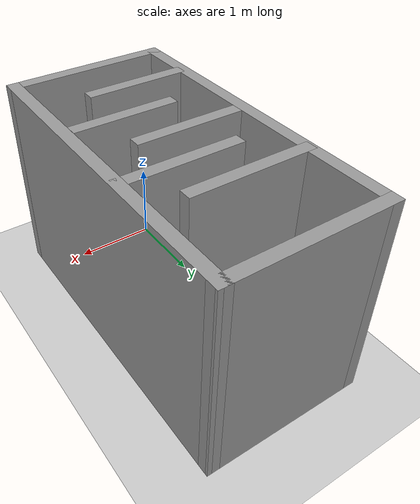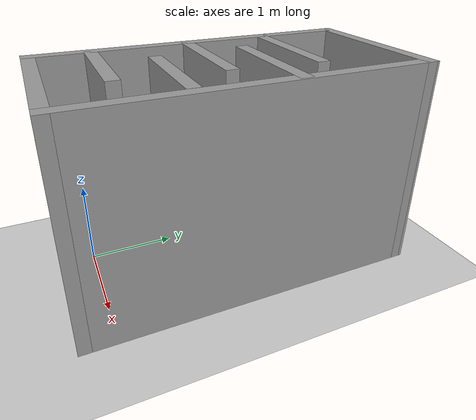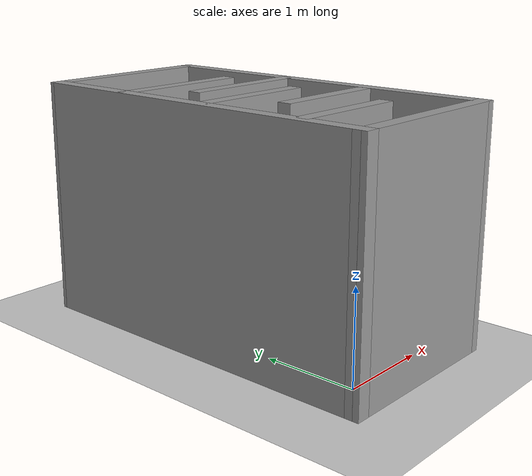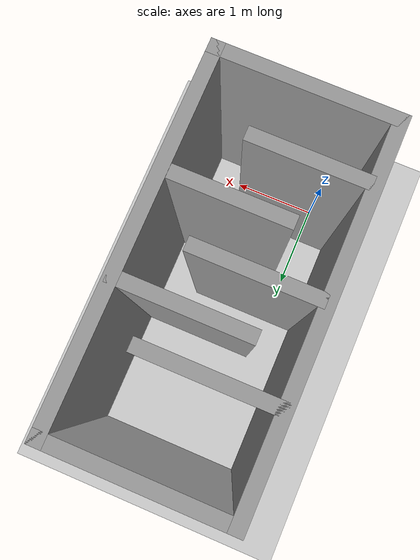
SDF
<sdf version="1.7">
 <world name="default">
  <light name="sun" type="directional">
   <pose>0 0 10 0 -0 0</pose>
   <diffuse>0.8 0.8 0.8 1</diffuse>
   <specular>0.2 0.2 0.2 1</specular>
   <attenuation>
    <range>1000</range>
    <constant>0.9</constant>
    <linear>0.01</linear>
    <quadratic>0.001</quadratic>
   </attenuation>
   <direction>-0.5 0.1 -0.9</direction>
   <spot><inner_angle>0</inner_angle><outer_angle>0</outer_angle><falloff>0</falloff></spot>
  </light>
  <model name="ground_plane">
   <static>1</static>
   <link name="link">
    <collision name="collision">
     <geometry><plane><normal>0 0 1</normal><size>100 100</size></plane></geometry>
     <surface>
      <contact><collide_bitmask>65535</collide_bitmask></contact>
      <friction><ode><mu>100</mu><mu2>50</mu2></ode></friction>
     </surface>
    </collision>
    <visual name="visual">
     <cast_shadows>0</cast_shadows>
     <geometry><plane><normal>0 0 1</normal><size>100 100</size></plane></geometry>
     <material>
      <script><uri>file://media/materials/scripts/gazebo.material</uri><name>Gazebo/Grey</name></script>
     </material>
    </visual>
   </link>
  </model>
  <gravity>0 0 -9.8</gravity>
  <magnetic_field>6e-06 2.3e-05 -4.2e-05</magnetic_field>
  <atmosphere type="adiabatic"/>
  <physics type="ode">
   <max_step_size>0.001</max_step_size>
   <real_time_factor>1</real_time_factor>
   <real_time_update_rate>1000</real_time_update_rate>
  </physics>
  <scene><ambient>0.4 0.4 0.4 1</ambient><background>0.7 0.7 0.7 1</background><shadows>1</shadows></scene>
  <spherical_coordinates>
   <surface_model>EARTH_WGS84</surface_model>
   <latitude_deg>0</latitude_deg>
   <longitude_deg>0</longitude_deg>
   <elevation>0</elevation>
   <heading_deg>0</heading_deg>
  </spherical_coordinates>
  <model name="corridor">
   <pose>-0.01072 1.6018 0 0 -0 1.56929</pose>
   <link name="Wall_14">
    <collision name="Wall_14_Collision">
     <geometry><box><size>4.01373 0.15 2.5</size></box></geometry>
     <pose>0 0 1.25 0 -0 0</pose>
    </collision>
    <visual name="Wall_14_Visual">
     <pose>0 0 1.25 0 -0 0</pose>
     <geometry><box><size>4.01373 0.15 2.5</size></box></geometry>
     <material>
      <script><uri>file://media/materials/scripts/gazebo.material</uri><name>Gazebo/Grey</name></script>
      <ambient>1 1 1 1</ambient>
     </material>
     <meta><layer>0</layer></meta>
    </visual>
    <pose>-0 -1.4603 0 0 -0 -8.4e-05</pose>
   </link>
   <link name="Wall_15">
    <collision name="Wall_15_Collision">
     <geometry><box><size>2 0.15 2.5</size></box></geometry>
     <pose>0 0 1.25 0 -0 0</pose>
    </collision>
    <visual name="Wall_15_Visual">
     <pose>0 0 1.25 0 -0 0</pose>
     <geometry><box><size>2 0.15 2.5</size></box></geometry>
     <material>
      <script><uri>file://media/materials/scripts/gazebo.material</uri><name>Gazebo/Grey</name></script>
      <ambient>1 1 1 1</ambient>
     </material>
     <meta><layer>0</layer></meta>
    </visual>
    <pose>1.93186 -0.535466 0 0 -0 1.5708</pose>
   </link>
   <link name="Wall_16">
    <collision name="Wall_16_Collision">
     <geometry><box><size>4.01373 0.15 2.5</size></box></geometry>
     <pose>0 0 1.25 0 -0 0</pose>
    </collision>
    <visual name="Wall_16_Visual">
     <pose>0 0 1.25 0 -0 0</pose>
     <geometry><box><size>4.01373 0.15 2.5</size></box></geometry>
     <material>
      <script><uri>file://media/materials/scripts/gazebo.material</uri><name>Gazebo/Grey</name></script>
      <ambient>1 1 1 1</ambient>
     </material>
     <meta><layer>0</layer></meta>
    </visual>
    <pose>-0 0.389696 0 0 -0 3.14151</pose>
   </link>
   <link name="Wall_76">
    <collision name="Wall_76_Collision">
     <geometry><box><size>1.25 0.15 2.5</size></box></geometry>
     <pose>0 0 1.25 0 -0 0</pose>
    </collision>
    <visual name="Wall_76_Visual">
     <pose>0 0 1.25 0 -0 0</pose>
     <geometry><box><size>1.25 0.15 2.5</size></box></geometry>
     <material>
      <script><uri>file://media/materials/scripts/gazebo.material</uri><name>Gazebo/Grey</name></script>
      <ambient>1 1 1 1</ambient>
     </material>
     <meta><layer>0</layer></meta>
    </visual>
    <pose>-1.26787 -0.252791 0 0 -0 -1.5708</pose>
   </link>
   <link name="Wall_78">
    <collision name="Wall_78_Collision">
     <geometry><box><size>1.25 0.15 2.5</size></box></geometry>
     <pose>0 0 1.25 0 -0 0</pose>
    </collision>
    <visual name="Wall_78_Visual">
     <pose>0 0 1.25 0 -0 0</pose>
     <geometry><box><size>1.25 0.15 2.5</size></box></geometry>
     <material>
      <script><uri>file://media/materials/scripts/gazebo.material</uri><name>Gazebo/Grey</name></script>
      <ambient>1 1 1 1</ambient>
     </material>
     <meta><layer>0</layer></meta>
    </visual>
    <pose>-0.662952 -0.759079 0 0 -0 -1.5708</pose>
   </link>
   <link name="Wall_8">
    <collision name="Wall_8_Collision">
     <geometry><box><size>2 0.15 2.5</size></box></geometry>
     <pose>0 0 1.25 0 -0 0</pose>
    </collision>
    <visual name="Wall_8_Visual">
     <pose>0 0 1.25 0 -0 0</pose>
     <geometry><box><size>2 0.15 2.5</size></box></geometry>
     <material>
      <script><uri>file://media/materials/scripts/gazebo.material</uri><name>Gazebo/Grey</name></script>
      <ambient>1 1 1 1</ambient>
     </material>
     <meta><layer>0</layer></meta>
    </visual>
    <pose>-1.93186 -0.535143 0 0 -0 -1.5708</pose>
   </link>
   <link name="Wall_80">
    <collision name="Wall_80_Collision">
     <geometry><box><size>1.35 0.15 2.5</size></box></geometry>
     <pose>0 0 1.25 0 -0 0</pose>
    </collision>
    <visual name="Wall_80_Visual">
     <pose>0 0 1.25 0 -0 0</pose>
     <geometry><box><size>1.35 0.15 2.5</size></box></geometry>
     <material>
      <script><uri>file://media/materials/scripts/gazebo.material</uri><name>Gazebo/Grey</name></script>
      <ambient>1 1 1 1</ambient>
     </material>
     <meta><layer>0</layer></meta>
    </visual>
    <pose>-0.110638 -0.296216 0 0 -0 -1.5708</pose>
   </link>
   <link name="Wall_82">
    <collision name="Wall_82_Collision">
     <geometry><box><size>1.45 0.15 2.5</size></box></geometry>
     <pose>0 0 1.25 0 -0 0</pose>
    </collision>
    <visual name="Wall_82_Visual">
     <pose>0 0 1.25 0 -0 0</pose>
     <geometry><box><size>1.45 0.15 2.5</size></box></geometry>
     <material>
      <script><uri>file://media/materials/scripts/gazebo.material</uri><name>Gazebo/Grey</name></script>
      <ambient>1 1 1 1</ambient>
     </material>
     <meta><layer>0</layer></meta>
    </visual>
    <pose>0.415375 -0.780177 0 0 -0 -1.5708</pose>
   </link>
   <link name="Wall_84">
    <collision name="Wall_84_Collision">
     <geometry><box><size>1.5 0.15 2.5</size></box></geometry>
     <pose>0 0 1.25 0 -0 0</pose>
    </collision>
    <visual name="Wall_84_Visual">
     <pose>0 0 1.25 0 -0 0</pose>
     <geometry><box><size>1.5 0.15 2.5</size></box></geometry>
     <material>
      <script><uri>file://media/materials/scripts/gazebo.material</uri><name>Gazebo/Grey</name></script>
      <ambient>1 1 1 1</ambient>
     </material>
     <meta><layer>0</layer></meta>
    </visual>
    <pose>0.895361 -0.312039 0 0 -0 -1.5708</pose>
   </link>
   <static>1</static>
  </model>
 </world>
</sdf>
